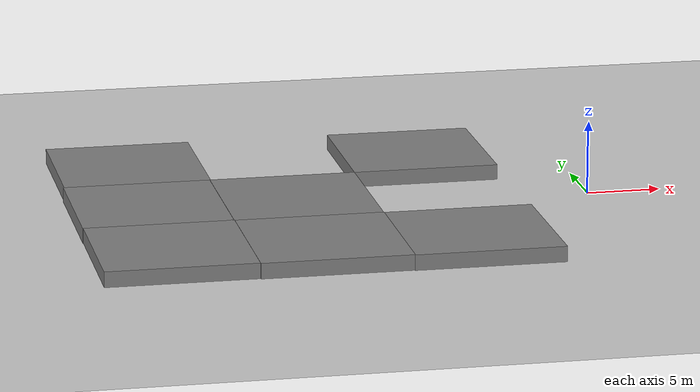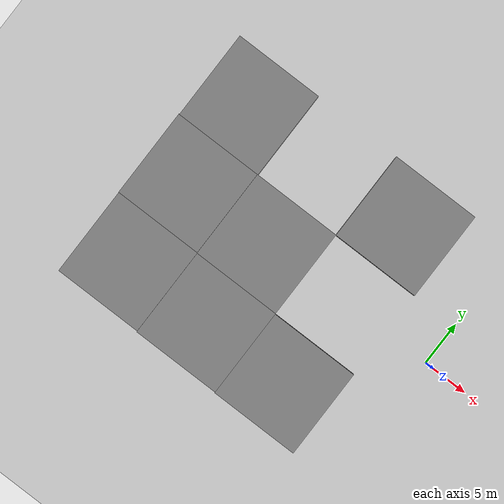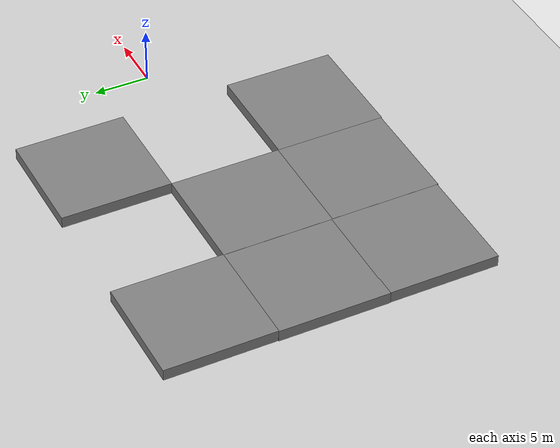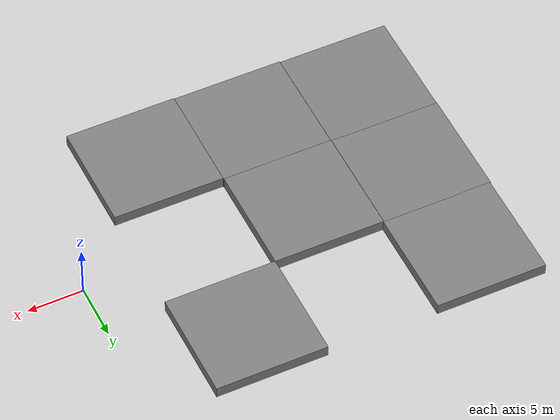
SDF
<sdf version="1.7">
 <world name="default">
  <model name="ground_plane">
   <static>1</static>
   <link name="link">
    <collision name="collision">
     <geometry><plane><normal>0 0 1</normal><size>100 100</size></plane></geometry>
     <surface>
      <contact><collide_bitmask>65535</collide_bitmask></contact>
      <friction><ode><mu>100</mu><mu2>50</mu2></ode></friction>
     </surface>
    </collision>
    <visual name="visual">
     <cast_shadows>0</cast_shadows>
     <geometry><plane><normal>0 0 1</normal><size>100 100</size></plane></geometry>
     <material>
      <script><uri>file://media/materials/scripts/gazebo.material</uri><name>Gazebo/Grey</name></script>
     </material>
    </visual>
   </link>
  </model>
  <model name="farm_clone_0_clone_0">
   <link name="link">
    <inertial>
     <mass>1</mass>
     <inertia><ixx>1</ixx><ixy>0</ixy><ixz>0</ixz><iyy>1</iyy><iyz>0</iyz><izz>1</izz></inertia>
    </inertial>
    <visual name="visual_1">
     <pose>2 2.5 0 0 -0 0</pose>
     <cast_shadows>0</cast_shadows>
     <geometry><box><size>10 10 2</size></box></geometry>
     <material>
      <script>
       <uri>model://mud_box/materials/scripts</uri>
       <uri>model://mud_box/materials/textures</uri>
       <name>vrc/mud</name>
      </script>
      <shader type="pixel"><normal_map>__default__</normal_map></shader>
      <ambient>0.5 0.5 0.5 1</ambient>
      <diffuse>0.5 0.5 0.5 1</diffuse>
      <specular>0.2 0.2 0.2 1</specular>
      <emissive>0 0 0 1</emissive>
     </material>
    </visual>
    <visual name="visual_2">
     <pose>2 2.5 0 0 -0 0</pose>
     <cast_shadows>0</cast_shadows>
     <geometry><box><size>10 10 2</size></box></geometry>
     <material>
      <script>
       <uri>model://mud_box/materials/scripts</uri>
       <uri>model://mud_box/materials/textures</uri>
       <name>vrc/mud</name>
      </script>
      <shader type="pixel"><normal_map>__default__</normal_map></shader>
      <ambient>0.5 0.5 0.5 1</ambient>
      <diffuse>0.5 0.5 0.5 1</diffuse>
      <specular>0.2 0.2 0.2 1</specular>
      <emissive>0 0 0 1</emissive>
     </material>
    </visual>
    <visual name="visual_4">
     <pose>2 2.5 0 0 -0 0</pose>
     <cast_shadows>0</cast_shadows>
     <geometry><box><size>10 10 2</size></box></geometry>
     <material>
      <script>
       <uri>model://mud_box/materials/scripts</uri>
       <uri>model://mud_box/materials/textures</uri>
       <name>vrc/mud</name>
      </script>
      <shader type="pixel"><normal_map>__default__</normal_map></shader>
      <ambient>0.5 0.5 0.5 1</ambient>
      <diffuse>0.5 0.5 0.5 1</diffuse>
      <specular>0.2 0.2 0.2 1</specular>
      <emissive>0 0 0 1</emissive>
     </material>
    </visual>
    <visual name="visual_3">
     <pose>2 2.5 0 0 -0 0</pose>
     <cast_shadows>0</cast_shadows>
     <geometry><box><size>10 10 2</size></box></geometry>
     <material>
      <script>
       <uri>model://mud_box/materials/scripts</uri>
       <uri>model://mud_box/materials/textures</uri>
       <name>vrc/mud</name>
      </script>
      <shader type="pixel"><normal_map>__default__</normal_map></shader>
      <ambient>0.5 0.5 0.5 1</ambient>
      <diffuse>0.5 0.5 0.5 1</diffuse>
      <specular>0.2 0.2 0.2 1</specular>
      <emissive>0 0 0 1</emissive>
     </material>
    </visual>
    <collision name="collision">
     <laser_retro>0.3</laser_retro>
     <pose>2 2.5 0 0 -0 0</pose>
     <geometry><box><size>100 100 2</size></box></geometry>
     <surface>
      <friction>
       <ode><mu>1.2</mu><mu2>1.2</mu2><fdir1>0 0 0</fdir1><slip1>0.01</slip1><slip2>0.01</slip2></ode>
       <torsional>
        <coefficient>0.05</coefficient>
        <patch_radius>0.08</patch_radius>
        <surface_radius>0.05</surface_radius>
        <use_patch_radius>1</use_patch_radius>
        <ode><slip>0</slip></ode>
       </torsional>
      </friction>
      <bounce><restitution_coefficient>0</restitution_coefficient><threshold>1</threshold></bounce>
      <contact>
       <collide_without_contact>0</collide_without_contact>
       <collide_without_contact_bitmask>1</collide_without_contact_bitmask>
       <collide_bitmask>1</collide_bitmask>
       <ode>
        <soft_cfm>0</soft_cfm>
        <soft_erp>1</soft_erp>
        <kp>1e+07</kp>
        <kd>5000</kd>
        <max_vel>0.001</max_vel>
        <min_depth>0.0005</min_depth>
       </ode>
       <bullet>
        <split_impulse>1</split_impulse>
        <split_impulse_penetration_threshold>-0.01</split_impulse_penetration_threshold>
        <soft_cfm>0</soft_cfm>
        <soft_erp>1</soft_erp>
        <kp>1e+07</kp>
        <kd>5000</kd>
       </bullet>
      </contact>
     </surface>
    </collision>
   </link>
   <static>1</static>
   <pose>-12.233 -12.8623 0 0 -0 0</pose>
  </model>
  <model name="farm_clone_0_clone_1_clone">
   <link name="link">
    <inertial>
     <mass>1</mass>
     <inertia><ixx>1</ixx><ixy>0</ixy><ixz>0</ixz><iyy>1</iyy><iyz>0</iyz><izz>1</izz></inertia>
    </inertial>
    <visual name="visual_1">
     <pose>2 2.5 0 0 -0 0</pose>
     <cast_shadows>0</cast_shadows>
     <geometry><box><size>10 10 2</size></box></geometry>
     <material>
      <script>
       <uri>model://mud_box/materials/scripts</uri>
       <uri>model://mud_box/materials/textures</uri>
       <name>vrc/mud</name>
      </script>
      <shader type="pixel"><normal_map>__default__</normal_map></shader>
      <ambient>0.5 0.5 0.5 1</ambient>
      <diffuse>0.5 0.5 0.5 1</diffuse>
      <specular>0.2 0.2 0.2 1</specular>
      <emissive>0 0 0 1</emissive>
     </material>
    </visual>
    <visual name="visual_2">
     <pose>2 2.5 0 0 -0 0</pose>
     <cast_shadows>0</cast_shadows>
     <geometry><box><size>10 10 2</size></box></geometry>
     <material>
      <script>
       <uri>model://mud_box/materials/scripts</uri>
       <uri>model://mud_box/materials/textures</uri>
       <name>vrc/mud</name>
      </script>
      <shader type="pixel"><normal_map>__default__</normal_map></shader>
      <ambient>0.5 0.5 0.5 1</ambient>
      <diffuse>0.5 0.5 0.5 1</diffuse>
      <specular>0.2 0.2 0.2 1</specular>
      <emissive>0 0 0 1</emissive>
     </material>
    </visual>
    <visual name="visual_4">
     <pose>2 2.5 0 0 -0 0</pose>
     <cast_shadows>0</cast_shadows>
     <geometry><box><size>10 10 2</size></box></geometry>
     <material>
      <script>
       <uri>model://mud_box/materials/scripts</uri>
       <uri>model://mud_box/materials/textures</uri>
       <name>vrc/mud</name>
      </script>
      <shader type="pixel"><normal_map>__default__</normal_map></shader>
      <ambient>0.5 0.5 0.5 1</ambient>
      <diffuse>0.5 0.5 0.5 1</diffuse>
      <specular>0.2 0.2 0.2 1</specular>
      <emissive>0 0 0 1</emissive>
     </material>
    </visual>
    <visual name="visual_3">
     <pose>2 2.5 0 0 -0 0</pose>
     <cast_shadows>0</cast_shadows>
     <geometry><box><size>10 10 2</size></box></geometry>
     <material>
      <script>
       <uri>model://mud_box/materials/scripts</uri>
       <uri>model://mud_box/materials/textures</uri>
       <name>vrc/mud</name>
      </script>
      <shader type="pixel"><normal_map>__default__</normal_map></shader>
      <ambient>0.5 0.5 0.5 1</ambient>
      <diffuse>0.5 0.5 0.5 1</diffuse>
      <specular>0.2 0.2 0.2 1</specular>
      <emissive>0 0 0 1</emissive>
     </material>
    </visual>
    <collision name="collision">
     <laser_retro>0.3</laser_retro>
     <pose>2 2.5 0 0 -0 0</pose>
     <geometry><box><size>100 100 2</size></box></geometry>
     <surface>
      <friction>
       <ode><mu>1.2</mu><mu2>1.2</mu2><fdir1>0 0 0</fdir1><slip1>0.01</slip1><slip2>0.01</slip2></ode>
       <torsional>
        <coefficient>0.05</coefficient>
        <patch_radius>0.08</patch_radius>
        <surface_radius>0.05</surface_radius>
        <use_patch_radius>1</use_patch_radius>
        <ode><slip>0</slip></ode>
       </torsional>
      </friction>
      <bounce><restitution_coefficient>0</restitution_coefficient><threshold>1</threshold></bounce>
      <contact>
       <collide_without_contact>0</collide_without_contact>
       <collide_without_contact_bitmask>1</collide_without_contact_bitmask>
       <collide_bitmask>1</collide_bitmask>
       <ode>
        <soft_cfm>0</soft_cfm>
        <soft_erp>1</soft_erp>
        <kp>1e+07</kp>
        <kd>5000</kd>
        <max_vel>0.001</max_vel>
        <min_depth>0.0005</min_depth>
       </ode>
       <bullet>
        <split_impulse>1</split_impulse>
        <split_impulse_penetration_threshold>-0.01</split_impulse_penetration_threshold>
        <soft_cfm>0</soft_cfm>
        <soft_erp>1</soft_erp>
        <kp>1e+07</kp>
        <kd>5000</kd>
       </bullet>
      </contact>
     </surface>
    </collision>
   </link>
   <static>1</static>
   <pose>-22.2365 -2.79984 0 0 -0 0</pose>
  </model>
  <model name="farm_clone_0_clone_1_clone_0">
   <link name="link">
    <inertial>
     <mass>1</mass>
     <inertia><ixx>1</ixx><ixy>0</ixy><ixz>0</ixz><iyy>1</iyy><iyz>0</iyz><izz>1</izz></inertia>
    </inertial>
    <visual name="visual_1">
     <pose>2 2.5 0 0 -0 0</pose>
     <cast_shadows>0</cast_shadows>
     <geometry><box><size>10 10 2</size></box></geometry>
     <material>
      <script>
       <uri>model://mud_box/materials/scripts</uri>
       <uri>model://mud_box/materials/textures</uri>
       <name>vrc/mud</name>
      </script>
      <shader type="pixel"><normal_map>__default__</normal_map></shader>
      <ambient>0.5 0.5 0.5 1</ambient>
      <diffuse>0.5 0.5 0.5 1</diffuse>
      <specular>0.2 0.2 0.2 1</specular>
      <emissive>0 0 0 1</emissive>
     </material>
    </visual>
    <visual name="visual_2">
     <pose>2 2.5 0 0 -0 0</pose>
     <cast_shadows>0</cast_shadows>
     <geometry><box><size>10 10 2</size></box></geometry>
     <material>
      <script>
       <uri>model://mud_box/materials/scripts</uri>
       <uri>model://mud_box/materials/textures</uri>
       <name>vrc/mud</name>
      </script>
      <shader type="pixel"><normal_map>__default__</normal_map></shader>
      <ambient>0.5 0.5 0.5 1</ambient>
      <diffuse>0.5 0.5 0.5 1</diffuse>
      <specular>0.2 0.2 0.2 1</specular>
      <emissive>0 0 0 1</emissive>
     </material>
    </visual>
    <visual name="visual_4">
     <pose>2 2.5 0 0 -0 0</pose>
     <cast_shadows>0</cast_shadows>
     <geometry><box><size>10 10 2</size></box></geometry>
     <material>
      <script>
       <uri>model://mud_box/materials/scripts</uri>
       <uri>model://mud_box/materials/textures</uri>
       <name>vrc/mud</name>
      </script>
      <shader type="pixel"><normal_map>__default__</normal_map></shader>
      <ambient>0.5 0.5 0.5 1</ambient>
      <diffuse>0.5 0.5 0.5 1</diffuse>
      <specular>0.2 0.2 0.2 1</specular>
      <emissive>0 0 0 1</emissive>
     </material>
    </visual>
    <visual name="visual_3">
     <pose>2 2.5 0 0 -0 0</pose>
     <cast_shadows>0</cast_shadows>
     <geometry><box><size>10 10 2</size></box></geometry>
     <material>
      <script>
       <uri>model://mud_box/materials/scripts</uri>
       <uri>model://mud_box/materials/textures</uri>
       <name>vrc/mud</name>
      </script>
      <shader type="pixel"><normal_map>__default__</normal_map></shader>
      <ambient>0.5 0.5 0.5 1</ambient>
      <diffuse>0.5 0.5 0.5 1</diffuse>
      <specular>0.2 0.2 0.2 1</specular>
      <emissive>0 0 0 1</emissive>
     </material>
    </visual>
    <collision name="collision">
     <laser_retro>0.3</laser_retro>
     <pose>2 2.5 0 0 -0 0</pose>
     <geometry><box><size>100 100 2</size></box></geometry>
     <surface>
      <friction>
       <ode><mu>1.2</mu><mu2>1.2</mu2><fdir1>0 0 0</fdir1><slip1>0.01</slip1><slip2>0.01</slip2></ode>
       <torsional>
        <coefficient>0.05</coefficient>
        <patch_radius>0.08</patch_radius>
        <surface_radius>0.05</surface_radius>
        <use_patch_radius>1</use_patch_radius>
        <ode><slip>0</slip></ode>
       </torsional>
      </friction>
      <bounce><restitution_coefficient>0</restitution_coefficient><threshold>1</threshold></bounce>
      <contact>
       <collide_without_contact>0</collide_without_contact>
       <collide_without_contact_bitmask>1</collide_without_contact_bitmask>
       <collide_bitmask>1</collide_bitmask>
       <ode>
        <soft_cfm>0</soft_cfm>
        <soft_erp>1</soft_erp>
        <kp>1e+07</kp>
        <kd>5000</kd>
        <max_vel>0.001</max_vel>
        <min_depth>0.0005</min_depth>
       </ode>
       <bullet>
        <split_impulse>1</split_impulse>
        <split_impulse_penetration_threshold>-0.01</split_impulse_penetration_threshold>
        <soft_cfm>0</soft_cfm>
        <soft_erp>1</soft_erp>
        <kp>1e+07</kp>
        <kd>5000</kd>
       </bullet>
      </contact>
     </surface>
    </collision>
   </link>
   <static>1</static>
   <pose>-22.2078 -12.7905 0 0 -0 0</pose>
  </model>
  <model name="farm_clone_0_clone_1_clone_1_clone_8">
   <link name="link">
    <inertial>
     <mass>1</mass>
     <inertia><ixx>1</ixx><ixy>0</ixy><ixz>0</ixz><iyy>1</iyy><iyz>0</iyz><izz>1</izz></inertia>
    </inertial>
    <visual name="visual_1">
     <pose>2 2.5 0 0 -0 0</pose>
     <cast_shadows>0</cast_shadows>
     <geometry><box><size>10 10 2</size></box></geometry>
     <material>
      <script>
       <uri>model://mud_box/materials/scripts</uri>
       <uri>model://mud_box/materials/textures</uri>
       <name>vrc/mud</name>
      </script>
      <shader type="pixel"><normal_map>__default__</normal_map></shader>
      <ambient>0.5 0.5 0.5 1</ambient>
      <diffuse>0.5 0.5 0.5 1</diffuse>
      <specular>0.2 0.2 0.2 1</specular>
      <emissive>0 0 0 1</emissive>
     </material>
    </visual>
    <visual name="visual_2">
     <pose>2 2.5 0 0 -0 0</pose>
     <cast_shadows>0</cast_shadows>
     <geometry><box><size>10 10 2</size></box></geometry>
     <material>
      <script>
       <uri>model://mud_box/materials/scripts</uri>
       <uri>model://mud_box/materials/textures</uri>
       <name>vrc/mud</name>
      </script>
      <shader type="pixel"><normal_map>__default__</normal_map></shader>
      <ambient>0.5 0.5 0.5 1</ambient>
      <diffuse>0.5 0.5 0.5 1</diffuse>
      <specular>0.2 0.2 0.2 1</specular>
      <emissive>0 0 0 1</emissive>
     </material>
    </visual>
    <visual name="visual_4">
     <pose>2 2.5 0 0 -0 0</pose>
     <cast_shadows>0</cast_shadows>
     <geometry><box><size>10 10 2</size></box></geometry>
     <material>
      <script>
       <uri>model://mud_box/materials/scripts</uri>
       <uri>model://mud_box/materials/textures</uri>
       <name>vrc/mud</name>
      </script>
      <shader type="pixel"><normal_map>__default__</normal_map></shader>
      <ambient>0.5 0.5 0.5 1</ambient>
      <diffuse>0.5 0.5 0.5 1</diffuse>
      <specular>0.2 0.2 0.2 1</specular>
      <emissive>0 0 0 1</emissive>
     </material>
    </visual>
    <visual name="visual_3">
     <pose>2 2.5 0 0 -0 0</pose>
     <cast_shadows>0</cast_shadows>
     <geometry><box><size>10 10 2</size></box></geometry>
     <material>
      <script>
       <uri>model://mud_box/materials/scripts</uri>
       <uri>model://mud_box/materials/textures</uri>
       <name>vrc/mud</name>
      </script>
      <shader type="pixel"><normal_map>__default__</normal_map></shader>
      <ambient>0.5 0.5 0.5 1</ambient>
      <diffuse>0.5 0.5 0.5 1</diffuse>
      <specular>0.2 0.2 0.2 1</specular>
      <emissive>0 0 0 1</emissive>
     </material>
    </visual>
    <collision name="collision">
     <laser_retro>0.3</laser_retro>
     <pose>2 2.5 0 0 -0 0</pose>
     <geometry><box><size>100 100 2</size></box></geometry>
     <surface>
      <friction>
       <ode><mu>1.2</mu><mu2>1.2</mu2><fdir1>0 0 0</fdir1><slip1>0.01</slip1><slip2>0.01</slip2></ode>
       <torsional>
        <coefficient>0.05</coefficient>
        <patch_radius>0.08</patch_radius>
        <surface_radius>0.05</surface_radius>
        <use_patch_radius>1</use_patch_radius>
        <ode><slip>0</slip></ode>
       </torsional>
      </friction>
      <bounce><restitution_coefficient>0</restitution_coefficient><threshold>1</threshold></bounce>
      <contact>
       <collide_without_contact>0</collide_without_contact>
       <collide_without_contact_bitmask>1</collide_without_contact_bitmask>
       <collide_bitmask>1</collide_bitmask>
       <ode>
        <soft_cfm>0</soft_cfm>
        <soft_erp>1</soft_erp>
        <kp>1e+07</kp>
        <kd>5000</kd>
        <max_vel>0.001</max_vel>
        <min_depth>0.0005</min_depth>
       </ode>
       <bullet>
        <split_impulse>1</split_impulse>
        <split_impulse_penetration_threshold>-0.01</split_impulse_penetration_threshold>
        <soft_cfm>0</soft_cfm>
        <soft_erp>1</soft_erp>
        <kp>1e+07</kp>
        <kd>5000</kd>
       </bullet>
      </contact>
     </surface>
    </collision>
   </link>
   <static>1</static>
   <pose>-12.2337 7.177 0 0 -0 0</pose>
  </model>
  <model name="farm_clone_0_clone_1_clone_1_clone_26">
   <link name="link">
    <inertial>
     <mass>1</mass>
     <inertia><ixx>1</ixx><ixy>0</ixy><ixz>0</ixz><iyy>1</iyy><iyz>0</iyz><izz>1</izz></inertia>
    </inertial>
    <visual name="visual_1">
     <pose>2 2.5 0 0 -0 0</pose>
     <cast_shadows>0</cast_shadows>
     <geometry><box><size>10 10 2</size></box></geometry>
     <material>
      <script>
       <uri>model://mud_box/materials/scripts</uri>
       <uri>model://mud_box/materials/textures</uri>
       <name>vrc/mud</name>
      </script>
      <shader type="pixel"><normal_map>__default__</normal_map></shader>
      <ambient>0.5 0.5 0.5 1</ambient>
      <diffuse>0.5 0.5 0.5 1</diffuse>
      <specular>0.2 0.2 0.2 1</specular>
      <emissive>0 0 0 1</emissive>
     </material>
    </visual>
    <visual name="visual_2">
     <pose>2 2.5 0 0 -0 0</pose>
     <cast_shadows>0</cast_shadows>
     <geometry><box><size>10 10 2</size></box></geometry>
     <material>
      <script>
       <uri>model://mud_box/materials/scripts</uri>
       <uri>model://mud_box/materials/textures</uri>
       <name>vrc/mud</name>
      </script>
      <shader type="pixel"><normal_map>__default__</normal_map></shader>
      <ambient>0.5 0.5 0.5 1</ambient>
      <diffuse>0.5 0.5 0.5 1</diffuse>
      <specular>0.2 0.2 0.2 1</specular>
      <emissive>0 0 0 1</emissive>
     </material>
    </visual>
    <visual name="visual_4">
     <pose>2 2.5 0 0 -0 0</pose>
     <cast_shadows>0</cast_shadows>
     <geometry><box><size>10 10 2</size></box></geometry>
     <material>
      <script>
       <uri>model://mud_box/materials/scripts</uri>
       <uri>model://mud_box/materials/textures</uri>
       <name>vrc/mud</name>
      </script>
      <shader type="pixel"><normal_map>__default__</normal_map></shader>
      <ambient>0.5 0.5 0.5 1</ambient>
      <diffuse>0.5 0.5 0.5 1</diffuse>
      <specular>0.2 0.2 0.2 1</specular>
      <emissive>0 0 0 1</emissive>
     </material>
    </visual>
    <visual name="visual_3">
     <pose>2 2.5 0 0 -0 0</pose>
     <cast_shadows>0</cast_shadows>
     <geometry><box><size>10 10 2</size></box></geometry>
     <material>
      <script>
       <uri>model://mud_box/materials/scripts</uri>
       <uri>model://mud_box/materials/textures</uri>
       <name>vrc/mud</name>
      </script>
      <shader type="pixel"><normal_map>__default__</normal_map></shader>
      <ambient>0.5 0.5 0.5 1</ambient>
      <diffuse>0.5 0.5 0.5 1</diffuse>
      <specular>0.2 0.2 0.2 1</specular>
      <emissive>0 0 0 1</emissive>
     </material>
    </visual>
    <collision name="collision">
     <laser_retro>0.3</laser_retro>
     <pose>2 2.5 0 0 -0 0</pose>
     <geometry><box><size>100 100 2</size></box></geometry>
     <surface>
      <friction>
       <ode><mu>1.2</mu><mu2>1.2</mu2><fdir1>0 0 0</fdir1><slip1>0.01</slip1><slip2>0.01</slip2></ode>
       <torsional>
        <coefficient>0.05</coefficient>
        <patch_radius>0.08</patch_radius>
        <surface_radius>0.05</surface_radius>
        <use_patch_radius>1</use_patch_radius>
        <ode><slip>0</slip></ode>
       </torsional>
      </friction>
      <bounce><restitution_coefficient>0</restitution_coefficient><threshold>1</threshold></bounce>
      <contact>
       <collide_without_contact>0</collide_without_contact>
       <collide_without_contact_bitmask>1</collide_without_contact_bitmask>
       <collide_bitmask>1</collide_bitmask>
       <ode>
        <soft_cfm>0</soft_cfm>
        <soft_erp>1</soft_erp>
        <kp>1e+07</kp>
        <kd>5000</kd>
        <max_vel>0.001</max_vel>
        <min_depth>0.0005</min_depth>
       </ode>
       <bullet>
        <split_impulse>1</split_impulse>
        <split_impulse_penetration_threshold>-0.01</split_impulse_penetration_threshold>
        <soft_cfm>0</soft_cfm>
        <soft_erp>1</soft_erp>
        <kp>1e+07</kp>
        <kd>5000</kd>
       </bullet>
      </contact>
     </surface>
    </collision>
   </link>
   <static>1</static>
   <pose>-32.1781 7.19046 0 0 -0 0</pose>
  </model>
  <model name="farm_clone_0_clone_1_clone_1_clone_27">
   <link name="link">
    <inertial>
     <mass>1</mass>
     <inertia><ixx>1</ixx><ixy>0</ixy><ixz>0</ixz><iyy>1</iyy><iyz>0</iyz><izz>1</izz></inertia>
    </inertial>
    <visual name="visual_1">
     <pose>2 2.5 0 0 -0 0</pose>
     <cast_shadows>0</cast_shadows>
     <geometry><box><size>10 10 2</size></box></geometry>
     <material>
      <script>
       <uri>model://mud_box/materials/scripts</uri>
       <uri>model://mud_box/materials/textures</uri>
       <name>vrc/mud</name>
      </script>
      <shader type="pixel"><normal_map>__default__</normal_map></shader>
      <ambient>0.5 0.5 0.5 1</ambient>
      <diffuse>0.5 0.5 0.5 1</diffuse>
      <specular>0.2 0.2 0.2 1</specular>
      <emissive>0 0 0 1</emissive>
     </material>
    </visual>
    <visual name="visual_2">
     <pose>2 2.5 0 0 -0 0</pose>
     <cast_shadows>0</cast_shadows>
     <geometry><box><size>10 10 2</size></box></geometry>
     <material>
      <script>
       <uri>model://mud_box/materials/scripts</uri>
       <uri>model://mud_box/materials/textures</uri>
       <name>vrc/mud</name>
      </script>
      <shader type="pixel"><normal_map>__default__</normal_map></shader>
      <ambient>0.5 0.5 0.5 1</ambient>
      <diffuse>0.5 0.5 0.5 1</diffuse>
      <specular>0.2 0.2 0.2 1</specular>
      <emissive>0 0 0 1</emissive>
     </material>
    </visual>
    <visual name="visual_4">
     <pose>2 2.5 0 0 -0 0</pose>
     <cast_shadows>0</cast_shadows>
     <geometry><box><size>10 10 2</size></box></geometry>
     <material>
      <script>
       <uri>model://mud_box/materials/scripts</uri>
       <uri>model://mud_box/materials/textures</uri>
       <name>vrc/mud</name>
      </script>
      <shader type="pixel"><normal_map>__default__</normal_map></shader>
      <ambient>0.5 0.5 0.5 1</ambient>
      <diffuse>0.5 0.5 0.5 1</diffuse>
      <specular>0.2 0.2 0.2 1</specular>
      <emissive>0 0 0 1</emissive>
     </material>
    </visual>
    <visual name="visual_3">
     <pose>2 2.5 0 0 -0 0</pose>
     <cast_shadows>0</cast_shadows>
     <geometry><box><size>10 10 2</size></box></geometry>
     <material>
      <script>
       <uri>model://mud_box/materials/scripts</uri>
       <uri>model://mud_box/materials/textures</uri>
       <name>vrc/mud</name>
      </script>
      <shader type="pixel"><normal_map>__default__</normal_map></shader>
      <ambient>0.5 0.5 0.5 1</ambient>
      <diffuse>0.5 0.5 0.5 1</diffuse>
      <specular>0.2 0.2 0.2 1</specular>
      <emissive>0 0 0 1</emissive>
     </material>
    </visual>
    <collision name="collision">
     <laser_retro>0.3</laser_retro>
     <pose>2 2.5 0 0 -0 0</pose>
     <geometry><box><size>100 100 2</size></box></geometry>
     <surface>
      <friction>
       <ode><mu>1.2</mu><mu2>1.2</mu2><fdir1>0 0 0</fdir1><slip1>0.01</slip1><slip2>0.01</slip2></ode>
       <torsional>
        <coefficient>0.05</coefficient>
        <patch_radius>0.08</patch_radius>
        <surface_radius>0.05</surface_radius>
        <use_patch_radius>1</use_patch_radius>
        <ode><slip>0</slip></ode>
       </torsional>
      </friction>
      <bounce><restitution_coefficient>0</restitution_coefficient><threshold>1</threshold></bounce>
      <contact>
       <collide_without_contact>0</collide_without_contact>
       <collide_without_contact_bitmask>1</collide_without_contact_bitmask>
       <collide_bitmask>1</collide_bitmask>
       <ode>
        <soft_cfm>0</soft_cfm>
        <soft_erp>1</soft_erp>
        <kp>1e+07</kp>
        <kd>5000</kd>
        <max_vel>0.001</max_vel>
        <min_depth>0.0005</min_depth>
       </ode>
       <bullet>
        <split_impulse>1</split_impulse>
        <split_impulse_penetration_threshold>-0.01</split_impulse_penetration_threshold>
        <soft_cfm>0</soft_cfm>
        <soft_erp>1</soft_erp>
        <kp>1e+07</kp>
        <kd>5000</kd>
       </bullet>
      </contact>
     </surface>
    </collision>
   </link>
   <static>1</static>
   <pose>-32.2457 -2.75389 0 0 -0 0</pose>
  </model>
  <model name="farm_clone_0_clone_1_clone_1_clone_28">
   <link name="link">
    <inertial>
     <mass>1</mass>
     <inertia><ixx>1</ixx><ixy>0</ixy><ixz>0</ixz><iyy>1</iyy><iyz>0</iyz><izz>1</izz></inertia>
    </inertial>
    <visual name="visual_1">
     <pose>2 2.5 0 0 -0 0</pose>
     <cast_shadows>0</cast_shadows>
     <geometry><box><size>10 10 2</size></box></geometry>
     <material>
      <script>
       <uri>model://mud_box/materials/scripts</uri>
       <uri>model://mud_box/materials/textures</uri>
       <name>vrc/mud</name>
      </script>
      <shader type="pixel"><normal_map>__default__</normal_map></shader>
      <ambient>0.5 0.5 0.5 1</ambient>
      <diffuse>0.5 0.5 0.5 1</diffuse>
      <specular>0.2 0.2 0.2 1</specular>
      <emissive>0 0 0 1</emissive>
     </material>
    </visual>
    <visual name="visual_2">
     <pose>2 2.5 0 0 -0 0</pose>
     <cast_shadows>0</cast_shadows>
     <geometry><box><size>10 10 2</size></box></geometry>
     <material>
      <script>
       <uri>model://mud_box/materials/scripts</uri>
       <uri>model://mud_box/materials/textures</uri>
       <name>vrc/mud</name>
      </script>
      <shader type="pixel"><normal_map>__default__</normal_map></shader>
      <ambient>0.5 0.5 0.5 1</ambient>
      <diffuse>0.5 0.5 0.5 1</diffuse>
      <specular>0.2 0.2 0.2 1</specular>
      <emissive>0 0 0 1</emissive>
     </material>
    </visual>
    <visual name="visual_4">
     <pose>2 2.5 0 0 -0 0</pose>
     <cast_shadows>0</cast_shadows>
     <geometry><box><size>10 10 2</size></box></geometry>
     <material>
      <script>
       <uri>model://mud_box/materials/scripts</uri>
       <uri>model://mud_box/materials/textures</uri>
       <name>vrc/mud</name>
      </script>
      <shader type="pixel"><normal_map>__default__</normal_map></shader>
      <ambient>0.5 0.5 0.5 1</ambient>
      <diffuse>0.5 0.5 0.5 1</diffuse>
      <specular>0.2 0.2 0.2 1</specular>
      <emissive>0 0 0 1</emissive>
     </material>
    </visual>
    <visual name="visual_3">
     <pose>2 2.5 0 0 -0 0</pose>
     <cast_shadows>0</cast_shadows>
     <geometry><box><size>10 10 2</size></box></geometry>
     <material>
      <script>
       <uri>model://mud_box/materials/scripts</uri>
       <uri>model://mud_box/materials/textures</uri>
       <name>vrc/mud</name>
      </script>
      <shader type="pixel"><normal_map>__default__</normal_map></shader>
      <ambient>0.5 0.5 0.5 1</ambient>
      <diffuse>0.5 0.5 0.5 1</diffuse>
      <specular>0.2 0.2 0.2 1</specular>
      <emissive>0 0 0 1</emissive>
     </material>
    </visual>
    <collision name="collision">
     <laser_retro>0.3</laser_retro>
     <pose>2 2.5 0 0 -0 0</pose>
     <geometry><box><size>100 100 2</size></box></geometry>
     <surface>
      <friction>
       <ode><mu>1.2</mu><mu2>1.2</mu2><fdir1>0 0 0</fdir1><slip1>0.01</slip1><slip2>0.01</slip2></ode>
       <torsional>
        <coefficient>0.05</coefficient>
        <patch_radius>0.08</patch_radius>
        <surface_radius>0.05</surface_radius>
        <use_patch_radius>1</use_patch_radius>
        <ode><slip>0</slip></ode>
       </torsional>
      </friction>
      <bounce><restitution_coefficient>0</restitution_coefficient><threshold>1</threshold></bounce>
      <contact>
       <collide_without_contact>0</collide_without_contact>
       <collide_without_contact_bitmask>1</collide_without_contact_bitmask>
       <collide_bitmask>1</collide_bitmask>
       <ode>
        <soft_cfm>0</soft_cfm>
        <soft_erp>1</soft_erp>
        <kp>1e+07</kp>
        <kd>5000</kd>
        <max_vel>0.001</max_vel>
        <min_depth>0.0005</min_depth>
       </ode>
       <bullet>
        <split_impulse>1</split_impulse>
        <split_impulse_penetration_threshold>-0.01</split_impulse_penetration_threshold>
        <soft_cfm>0</soft_cfm>
        <soft_erp>1</soft_erp>
        <kp>1e+07</kp>
        <kd>5000</kd>
       </bullet>
      </contact>
     </surface>
    </collision>
   </link>
   <static>1</static>
   <pose>-32.2119 -12.6982 0 0 -0 0</pose>
  </model>
 </world>
</sdf>
